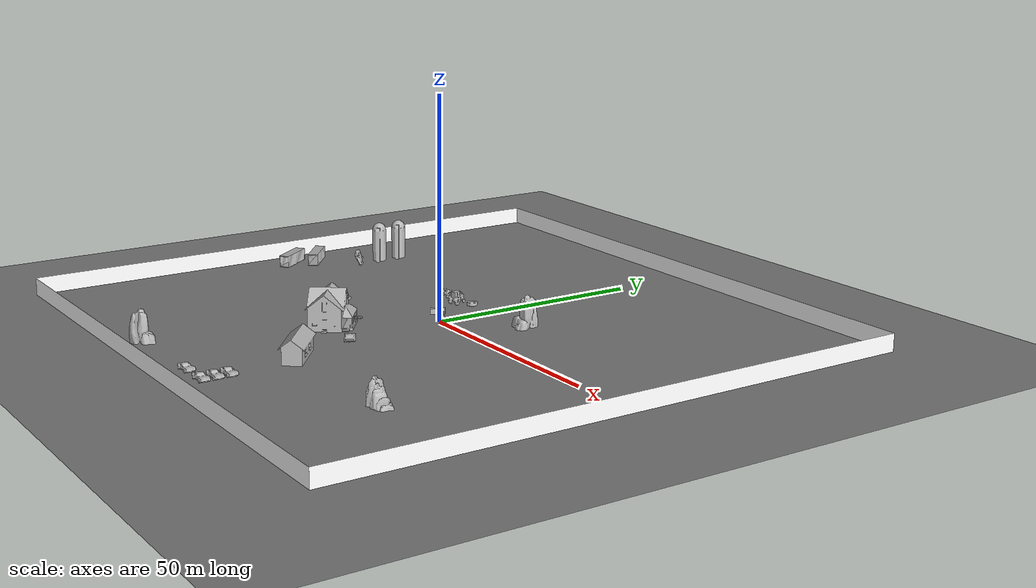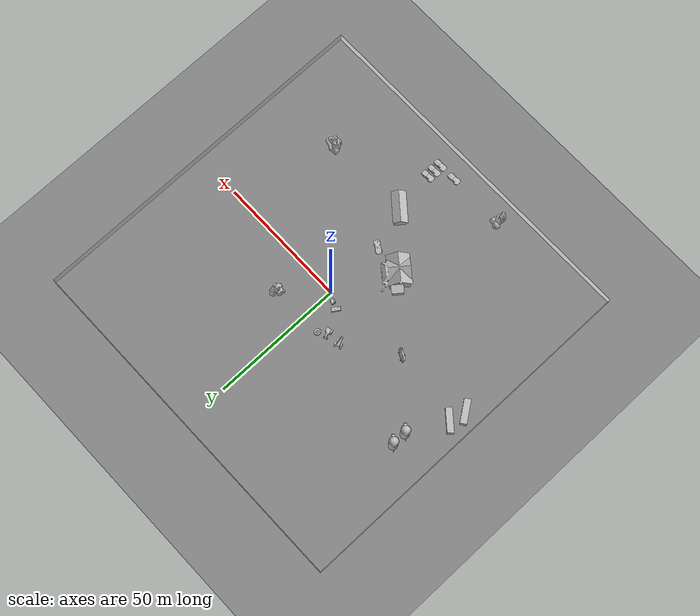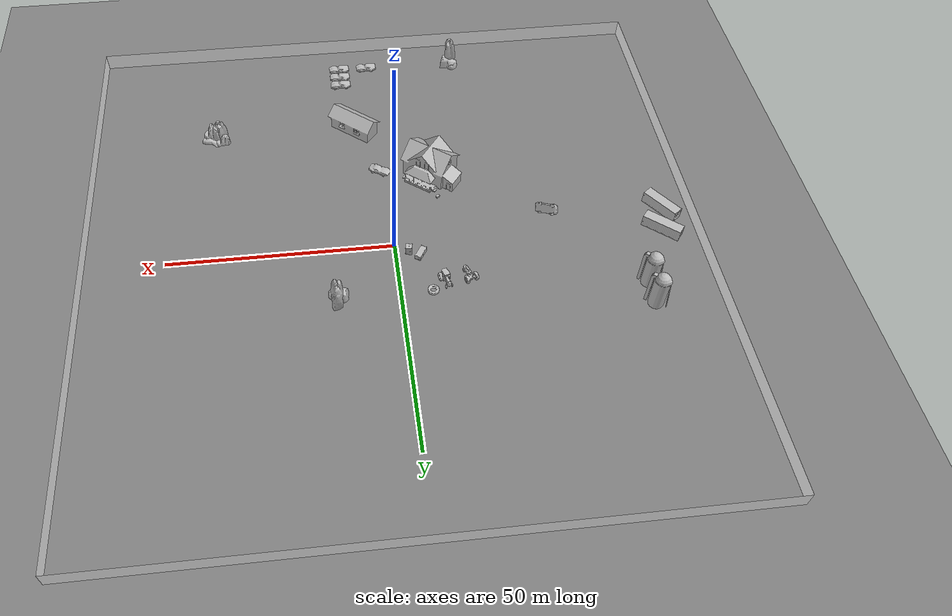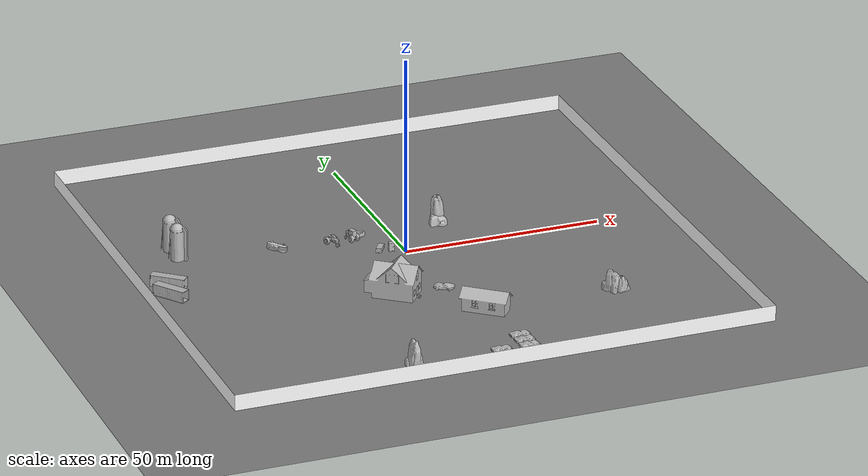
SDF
<sdf version="1.8">
 <world name="not_so_simple_trees">
  <plugin name="ignition::gazebo::systems::Physics" filename="ignition-gazebo-physics-system"/>
  <plugin name="ignition::gazebo::systems::UserCommands" filename="ignition-gazebo-user-commands-system"/>
  <plugin name="ignition::gazebo::systems::SceneBroadcaster" filename="ignition-gazebo-scene-broadcaster-system"/>
  <plugin name="ignition::gazebo::systems::Contact" filename="ignition-gazebo-contact-system"/>
  <light name="sun" type="directional">
   <pose>0 0 10 0 -0 0</pose>
   <diffuse>0.8 0.8 0.8 1</diffuse>
   <specular>0.2 0.2 0.2 1</specular>
   <attenuation>
    <range>1000</range>
    <constant>0.9</constant>
    <linear>0.01</linear>
    <quadratic>0.001</quadratic>
   </attenuation>
   <direction>-0.5 0.1 -0.9</direction>
   <visualize>false</visualize>
  </light>
  <gravity>0 0 -9.81</gravity>
  <magnetic_field>6e-06 2.3e-05 -4.2e-05</magnetic_field>
  <atmosphere type="adiabatic"/>
  <physics name="default_physics" type="ignored">
   <max_step_size>0.01</max_step_size>
   <real_time_factor>1</real_time_factor>
   <real_time_update_rate>100</real_time_update_rate>
  </physics>
  <scene>
   <ambient>1.0 1.0 1.0</ambient>
   <background>0.8 0.8 0.8</background>
   <shadows>1</shadows>
   <grid>false</grid>
  </scene>
  <spherical_coordinates>
   <latitude_deg>0.0</latitude_deg>
   <longitude_deg>0.0</longitude_deg>
   <elevation>10.0</elevation>
   <heading_deg>0</heading_deg>
   <surface_model>EARTH_WGS84</surface_model>
  </spherical_coordinates>
  <include><uri>model://grass_plane</uri><name>grass_plane</name></include>
  <include><uri>model://rock1</uri><name>rock1</name><pose>39.2048 -37.5880 0 0 0 0.8318</pose></include>
  <include><uri>model://rock2</uri><name>rock2</name><pose>13 13 0 0 0 -2.6555</pose></include>
  <include><uri>model://rock2</uri><name>rock3</name><pose>-20.5000 -60.0000 0 0 0 0.4</pose></include>
  <include><uri>model://farm_house</uri><name>farm_house</name><pose>-10.5 -21.5 0 0 0 2.4848</pose></include>
  <include><uri>model://farm_loft</uri><name>farm_loft</name><pose>6 -38 0 0 0 0.8799</pose></include>
  <include>
   <uri>model://shipping_container</uri>
   <name>shipping_container1</name>
   <pose>-61.5 -4.5 0 0 0 -0.947008</pose>
  </include>
  <include>
   <uri>model://shipping_container</uri>
   <name>shipping_container2</name>
   <pose>-60 1.5 0 0 0 -0.696420</pose>
  </include>
  <include><uri>model://silo</uri><name>silo1</name><pose>-53 21 0 0 0 0</pose></include>
  <include><uri>model://silo</uri><name>silo2</name><pose>-53 15.5 0 0 0 0</pose></include>
  <include><uri>model://tractor_old</uri><name>tractor_old</name><pose>-15 10 0 0 0 -1.2</pose></include>
  <include><uri>model://tractor_new</uri><name>tractor_new</name><pose>-10 11 0 0 0 -0.3</pose></include>
  <include><uri>model://tractor_tyre</uri><name>tractor_tyre_stack</name><pose>-7 13 0 0 0 0</pose></include>
  <include><uri>model://small_crate</uri><name>small_crate</name><pose>-11.5 -13.5 0 0 0 0.5</pose></include>
  <include><uri>model://barrel_crate</uri><name>barrel_crate</name><pose>-3 2 0 0 0 -0.2</pose></include>
  <include>
   <uri>model://barrel_crate_horizontal</uri>
   <name>barrel_crate_2</name>
   <pose>-5.5 3 0 0 0 1.0</pose>
  </include>
  <include>
   <uri>model://forest_wall</uri>
   <name>forest_wall_north</name>
   <pose>0 67.5 2 1.5708 0 0</pose>
  </include>
  <include>
   <uri>model://forest_wall</uri>
   <name>forest_wall_south</name>
   <pose>0 -67.5 2 1.5708 0 0</pose>
  </include>
  <include>
   <uri>model://forest_wall</uri>
   <name>forest_wall_east</name>
   <pose>67.5 0 2 1.5708 0 1.5708</pose>
  </include>
  <include>
   <uri>model://forest_wall</uri>
   <name>forest_wall_west</name>
   <pose>-67.5 0 2 1.5708 0 1.5708</pose>
  </include>
  <include><uri>model://muscle_car</uri><name>muscle_car1</name><pose>1 -23 0 0 0 2.6</pose></include>
  <include><uri>model://muscle_car</uri><name>muscle_car2</name><pose>8 -60 0 0 0 0</pose></include>
  <include><uri>model://muscle_car</uri><name>muscle_car3</name><pose>8 -57 0 0 0 0</pose></include>
  <include><uri>model://muscle_car</uri><name>muscle_car4</name><pose>8 -54 0 0 0 0</pose></include>
  <include><uri>model://muscle_car</uri><name>muscle_car5</name><pose>1 -60 0 0 0 0</pose></include>
  <include>
   <uri>model://muscle_car</uri>
   <name>muscle_car6</name>
   <pose>-33.1952 -0.8055 7.4569 1.9828 0.2028 -0.5197</pose>
  </include>
 </world>
</sdf>

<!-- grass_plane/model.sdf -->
<sdf version="1.7">
<model name="grass_plane">
    <static>true</static>
    <link name="link">
        <collision name="collision">
            <geometry>
            <box>
                <normal>0 0 1</normal>
                <size>135 135 0.01</size>
            </box>
            </geometry>
        </collision>
        <visual name="visual">
            <cast_shadows>false</cast_shadows>
            <geometry>
            <plane>
                <normal>0 0 1</normal>
                <size>135 135</size>
            </plane>
            </geometry>
            <material>
                <ambient>0.5 0.5 0.5 1</ambient>
                <diffuse>0.5 0.5 0.5 1</diffuse>
                <specular>0.2 0.2 0.2 1</specular>
                <pbr>
                    <metal>
                    <albedo_map>
                        model://grass_plane/materials/textures/empty_grass.png
                    </albedo_map>
                    </metal>
                </pbr>
            </material>
        </visual>
    </link>
</model>
</sdf>

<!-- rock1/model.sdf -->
<sdf version="1.7">
  <model name="rock1">
    <static>true</static>
    <link name="rock1_link">
      <collision name="rock1_collision">
        <geometry>
          <mesh>
            <uri>model://rock1/rock1.dae</uri>
            <scale>1 1 1</scale>
          </mesh>
        </geometry>
      </collision>
      <visual name="rock1_visual">
        <geometry>
          <mesh>
            <uri>model://rock1/rock1.dae</uri>
            <scale>1 1 1</scale>
          </mesh>
        </geometry>
      </visual>
    </link>
  </model>
</sdf>

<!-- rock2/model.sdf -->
<sdf version="1.7">
  <model name="rock2">
    <static>true</static>
    <link name="rock2_link">
      <collision name="rock2_collision">
        <geometry>
          <mesh>
            <uri>model://rock2/rock2.dae</uri>
            <scale>1 1 1</scale>
          </mesh>
        </geometry>
      </collision>
      <visual name="rock2_visual">
        <geometry>
          <mesh>
            <uri>model://rock2/rock2.dae</uri>
            <scale>1 1 1</scale>
          </mesh>
        </geometry>
      </visual>
    </link>
  </model>
</sdf>

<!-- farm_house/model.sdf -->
<sdf version="1.7">
  <model name="farm_house">
    <static>true</static>
    <link name="farm_house_link">
      <collision name="farm_house_collision">
        <geometry>
          <mesh>
            <uri>model://farm_house/farm_house.dae</uri>
            <scale>1 1 1</scale>
          </mesh>
        </geometry>
      </collision>
      <visual name="farm_house_visual">
        <geometry>
          <mesh>
            <uri>model://farm_house/farm_house.dae</uri>
            <scale>1 1 1</scale>
          </mesh>
        </geometry>
      </visual>
    </link>
  </model>
</sdf>

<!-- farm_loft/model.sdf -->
<sdf version="1.7">
  <model name="farm_loft">
    <static>true</static>
    <link name="farm_loft_link">
      <collision name="farm_loft_collision">
        <geometry>
          <mesh>
            <uri>model://farm_loft/farm_loft.dae</uri>
            <scale>1 1 1</scale>
          </mesh>
        </geometry>
      </collision>
      <visual name="farm_loft_visual">
        <geometry>
          <mesh>
            <uri>model://farm_loft/farm_loft.dae</uri>
            <scale>1 1 1</scale>
          </mesh>
        </geometry>
      </visual>
    </link>
  </model>
</sdf>

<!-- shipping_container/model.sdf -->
<sdf version="1.7">
  <model name="shipping_container">
    <static>true</static>
    <link name="shipping_container_link">
      <collision name="shipping_container_collision">
        <geometry>
          <mesh>
            <uri>model://shipping_container/shipping_container.dae</uri>
            <scale>1 1 1</scale>
          </mesh>
        </geometry>
      </collision>
      <visual name="shipping_container_visual">
        <geometry>
          <mesh>
            <uri>model://shipping_container/shipping_container.dae</uri>
            <scale>1 1 1</scale>
          </mesh>
        </geometry>
      </visual>
    </link>
  </model>
</sdf>

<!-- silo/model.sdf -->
<sdf version="1.7">
  <model name="silo">
    <static>true</static>
    <link name="silo_link">
      <collision name="silo_collision">
        <geometry>
          <mesh>
            <uri>model://silo/silo.dae</uri>
            <scale>1 1 1</scale>
          </mesh>
        </geometry>
      </collision>
      <visual name="silo_visual">
        <geometry>
          <mesh>
            <uri>model://silo/silo.dae</uri>
            <scale>1 1 1</scale>
          </mesh>
        </geometry>
      </visual>
    </link>
  </model>
</sdf>

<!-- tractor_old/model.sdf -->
<sdf version="1.7">
  <model name="tractor_old">
    <static>true</static>
    <link name="tractor_old_link">
      <collision name="tractor_old_collision">
        <geometry>
          <mesh>
            <uri>model://tractor_old/tractor_old.dae</uri>
            <scale>1 1 1</scale>
          </mesh>
        </geometry>
      </collision>
      <visual name="tractor_old_visual">
        <geometry>
          <mesh>
            <uri>model://tractor_old/tractor_old.dae</uri>
            <scale>1 1 1</scale>
          </mesh>
        </geometry>
      </visual>
    </link>
  </model>
</sdf>

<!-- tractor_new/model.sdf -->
<sdf version="1.7">
  <model name="tractor_new">
    <static>true</static>
    <link name="tractor_new_link">
      <collision name="tractor_new_collision">
        <geometry>
          <mesh>
            <uri>model://tractor_new/tractor_new.dae</uri>
            <scale>1 1 1</scale>
          </mesh>
        </geometry>
      </collision>
      <visual name="tractor_new_visual">
        <geometry>
          <mesh>
            <uri>model://tractor_new/tractor_new.dae</uri>
            <scale>1 1 1</scale>
          </mesh>
        </geometry>
      </visual>
    </link>
  </model>
</sdf>

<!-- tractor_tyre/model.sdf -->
<sdf version="1.7">
  <model name="tractor_tyre">
    <static>true</static>
    <link name="tractor_tyre_link">
      <collision name="tractor_tyre_collision">
        <geometry>
          <mesh>
            <uri>model://tractor_tyre/tractor_tyre.dae</uri>
            <scale>1 1 1</scale>
          </mesh>
        </geometry>
      </collision>
      <visual name="tractor_tyre_visual">
        <geometry>
          <mesh>
            <uri>model://tractor_tyre/tractor_tyre.dae</uri>
            <scale>1 1 1</scale>
          </mesh>
        </geometry>
      </visual>
    </link>
  </model>
</sdf>

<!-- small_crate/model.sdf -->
<sdf version="1.7">
  <model name="small_crate">
    <static>true</static>
    <link name="small_crate_link">
      <collision name="small_crate_collision">
        <geometry>
          <mesh>
            <uri>model://small_crate/small_crate.dae</uri>
            <scale>1 1 1</scale>
          </mesh>
        </geometry>
      </collision>
      <visual name="small_crate_visual">
        <geometry>
          <mesh>
            <uri>model://small_crate/small_crate.dae</uri>
            <scale>1 1 1</scale>
          </mesh>
        </geometry>
      </visual>
    </link>
  </model>
</sdf>

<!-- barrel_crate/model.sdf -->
<sdf version="1.7">
  <model name="barrel_crate">
    <static>true</static>
    <link name="barrel_crate_link">
      <collision name="barrel_crate_collision">
        <geometry>
          <mesh>
            <uri>model://barrel_crate/barrel_crate.dae</uri>
            <scale>1 1 1</scale>
          </mesh>
        </geometry>
      </collision>
      <visual name="barrel_crate_visual">
        <geometry>
          <mesh>
            <uri>model://barrel_crate/barrel_crate.dae</uri>
            <scale>1 1 1</scale>
          </mesh>
        </geometry>
      </visual>
    </link>
  </model>
</sdf>

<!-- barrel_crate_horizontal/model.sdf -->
<sdf version="1.7">
  <model name="barrel_crate">
    <static>true</static>
    <link name="barrel_crate_link">
      <collision name="barrel_crate_collision">
        <geometry>
          <mesh>
            <uri>model://barrel_crate_horizontal/barrel_crate.dae</uri>
            <scale>1 1 1</scale>
          </mesh>
        </geometry>
      </collision>
      <visual name="barrel_crate_visual">
        <geometry>
          <mesh>
            <uri>model://barrel_crate_horizontal/barrel_crate.dae</uri>
            <scale>1 1 1</scale>
          </mesh>
        </geometry>
      </visual>
    </link>
  </model>
</sdf>

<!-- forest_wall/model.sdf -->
<sdf version="1.7">
<model name="forest_wall">
    <static>true</static>
    <link name="link">
        <collision name="collision">
            <geometry>
            <box>
                <normal>0 0 1</normal>
                <size>135 4 0.01</size>
            </box>
            </geometry>
        </collision>
        <visual name="visual">
            <cast_shadows>false</cast_shadows>
            <geometry>
            <plane>
                <normal>0 0 1</normal>
                <size>135 4</size>
            </plane>
            </geometry>
            <material>
                <diffuse>1.0 1.0 1.0 1</diffuse>
                <pbr>
                    <metal>
                    <albedo_map>
                        model://forest_wall/materials/textures/forest_wall_transparent.png
                    </albedo_map>
                    </metal>
                </pbr>
                <double_sided>true</double_sided>
            </material>
        </visual>
    </link>
</model>
</sdf>

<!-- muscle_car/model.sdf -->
<sdf version="1.7">
  <model name="muscle_car">
    <static>true</static>
    <link name="muscle_car_link">
      <collision name="muscle_car_collision">
        <geometry>
          <mesh>
            <uri>model://muscle_car/muscle_car.dae</uri>
            <scale>1 1 1</scale>
          </mesh>
        </geometry>
      </collision>
      <visual name="muscle_car_visual">
        <geometry>
          <mesh>
            <uri>model://muscle_car/muscle_car.dae</uri>
            <scale>1 1 1</scale>
          </mesh>
        </geometry>
      </visual>
    </link>
  </model>
</sdf>
